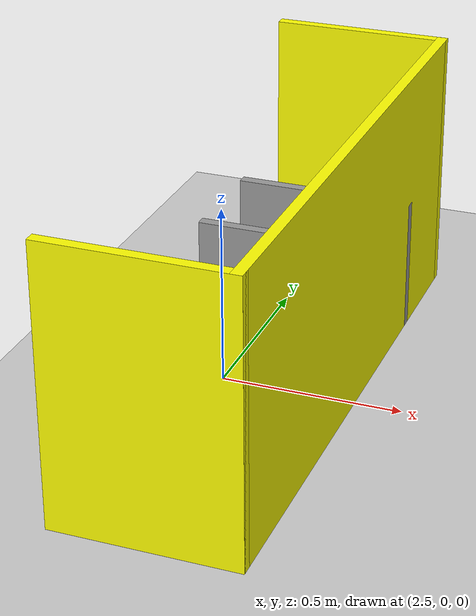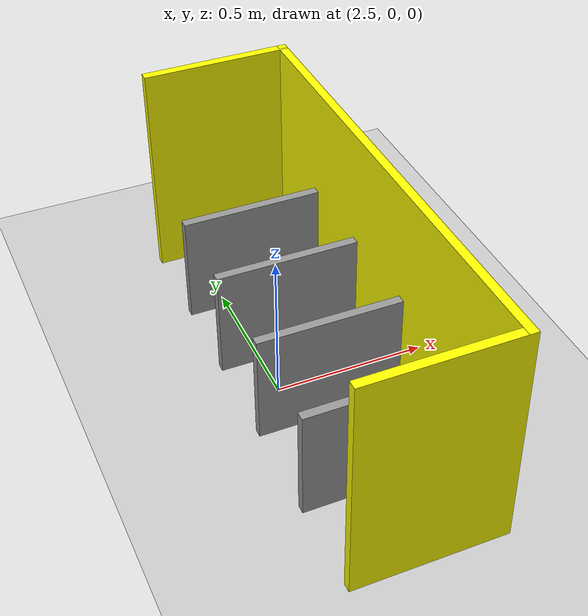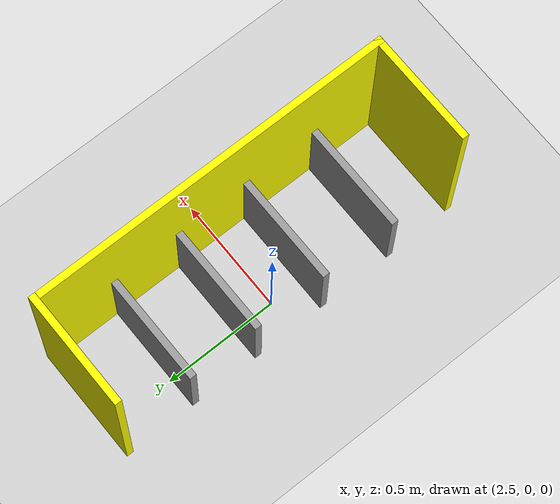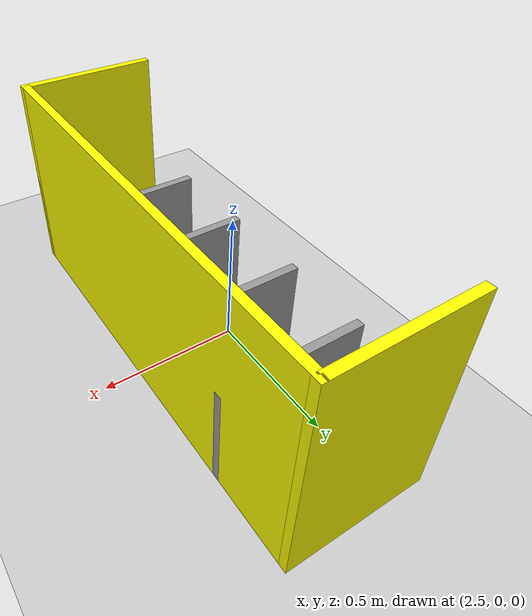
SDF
<sdf version="1.6">
 <world name="default">
  <light name="sun" type="directional">
   <pose>0 0 10 0 -0 0</pose>
   <diffuse>0.8 0.8 0.8 1</diffuse>
   <specular>0.2 0.2 0.2 1</specular>
   <attenuation>
    <range>1000</range>
    <constant>0.9</constant>
    <linear>0.01</linear>
    <quadratic>0.001</quadratic>
   </attenuation>
   <direction>-0.5 0.1 -0.9</direction>
  </light>
  <model name="ground_plane">
   <static>1</static>
   <link name="link">
    <collision name="collision">
     <geometry><plane><normal>0 0 1</normal><size>100 100</size></plane></geometry>
     <surface><friction><ode><mu>100</mu><mu2>50</mu2></ode></friction></surface>
    </collision>
    <visual name="visual">
     <cast_shadows>0</cast_shadows>
     <geometry><plane><normal>0 0 1</normal><size>100 100</size></plane></geometry>
     <material>
      <script><uri>file://media/materials/scripts/gazebo.material</uri><name>Gazebo/Grey</name></script>
     </material>
    </visual>
   </link>
  </model>
  <gravity>0 0 -9.8</gravity>
  <magnetic_field>6e-06 2.3e-05 -4.2e-05</magnetic_field>
  <atmosphere type="adiabatic"/>
  <physics name="default_physics" default="0" type="ode">
   <max_step_size>0.001</max_step_size>
   <real_time_factor>1</real_time_factor>
   <real_time_update_rate>1000</real_time_update_rate>
  </physics>
  <scene><ambient>0.4 0.4 0.4 1</ambient><background>0.7 0.7 0.7 1</background><shadows>1</shadows></scene>
  <spherical_coordinates>
   <surface_model>EARTH_WGS84</surface_model>
   <latitude_deg>0</latitude_deg>
   <longitude_deg>0</longitude_deg>
   <elevation>0</elevation>
   <heading_deg>0</heading_deg>
  </spherical_coordinates>
  <model name="goals">
   <pose>2.61967 0.001409 0 0 0 -1.57092</pose>
   <link name="Wall_106">
    <collision name="Wall_106_Collision">
     <geometry><box><size>0.5 0.03 0.375</size></box></geometry>
     <pose>0 0 0.1875 0 -0 0</pose>
    </collision>
    <visual name="Wall_106_Visual">
     <pose>0 0 0.1875 0 -0 0</pose>
     <geometry><box><size>0.5 0.03 0.375</size></box></geometry>
     <material>
      <script><uri>file://media/materials/scripts/gazebo.material</uri><name>Gazebo/Grey</name></script>
      <ambient>1 1 1 1</ambient>
     </material>
    </visual>
    <pose>0.152869 -0.000644 0 0 -0 1.5708</pose>
   </link>
   <link name="Wall_81">
    <collision name="Wall_81_Collision">
     <geometry><box><size>1.60284 0.03 0.75</size></box></geometry>
     <pose>0 0 0.375 0 -0 0</pose>
    </collision>
    <visual name="Wall_81_Visual">
     <pose>0 0 0.375 0 -0 0</pose>
     <geometry><box><size>1.60284 0.03 0.75</size></box></geometry>
     <material>
      <script><uri>file://media/materials/scripts/gazebo.material</uri><name>Gazebo/Grey</name></script>
      <ambient>1 1 0 1</ambient>
     </material>
    </visual>
    <pose>0 0.236828 0 0 -0 0</pose>
   </link>
   <link name="Wall_83">
    <collision name="Wall_83_Collision">
     <geometry><box><size>0.5 0.03 0.75</size></box></geometry>
     <pose>0 0 0.375 0 -0 0</pose>
    </collision>
    <visual name="Wall_83_Visual">
     <pose>0 0 0.375 0 -0 0</pose>
     <geometry><box><size>0.5 0.03 0.75</size></box></geometry>
     <material>
      <script><uri>file://media/materials/scripts/gazebo.material</uri><name>Gazebo/Grey</name></script>
      <ambient>1 1 0 1</ambient>
     </material>
    </visual>
    <pose>-0.7865 0.001828 0 0 0 -1.5708</pose>
   </link>
   <link name="Wall_85">
    <collision name="Wall_85_Collision">
     <geometry><box><size>0.5 0.03 0.75</size></box></geometry>
     <pose>0 0 0.375 0 -0 0</pose>
    </collision>
    <visual name="Wall_85_Visual">
     <pose>0 0 0.375 0 -0 0</pose>
     <geometry><box><size>0.5 0.03 0.75</size></box></geometry>
     <material>
      <script><uri>file://media/materials/scripts/gazebo.material</uri><name>Gazebo/Grey</name></script>
      <ambient>1 1 0 1</ambient>
     </material>
    </visual>
    <pose>0.7865 0.001828 0 0 0 -1.5708</pose>
   </link>
   <link name="Wall_93">
    <collision name="Wall_93_Collision">
     <geometry><box><size>0.5 0.03 0.375</size></box></geometry>
     <pose>0 0 0.1875 0 -0 0</pose>
    </collision>
    <visual name="Wall_93_Visual">
     <pose>0 0 0.1875 0 -0 0</pose>
     <geometry><box><size>0.5 0.03 0.375</size></box></geometry>
     <material>
      <script><uri>file://media/materials/scripts/gazebo.material</uri><name>Gazebo/Grey</name></script>
      <ambient>1 1 1 1</ambient>
     </material>
    </visual>
    <pose>-0.471782 0.001828 0 0 -0 1.5708</pose>
   </link>
   <link name="Wall_95">
    <collision name="Wall_95_Collision">
     <geometry><box><size>0.5 0.03 0.375</size></box></geometry>
     <pose>0 0 0.1875 0 -0 0</pose>
    </collision>
    <visual name="Wall_95_Visual">
     <pose>0 0 0.1875 0 -0 0</pose>
     <geometry><box><size>0.5 0.03 0.375</size></box></geometry>
     <material>
      <script><uri>file://media/materials/scripts/gazebo.material</uri><name>Gazebo/Grey</name></script>
      <ambient>1 1 1 1</ambient>
     </material>
    </visual>
    <pose>0.483934 -0.001828 0 0 -0 1.5708</pose>
   </link>
   <link name="Wall_99">
    <collision name="Wall_99_Collision">
     <geometry><box><size>0.5 0.03 0.375</size></box></geometry>
     <pose>0 0 0.1875 0 -0 0</pose>
    </collision>
    <visual name="Wall_99_Visual">
     <pose>0 0 0.1875 0 -0 0</pose>
     <geometry><box><size>0.5 0.03 0.375</size></box></geometry>
     <material>
      <script><uri>file://media/materials/scripts/gazebo.material</uri><name>Gazebo/Grey</name></script>
      <ambient>1 1 1 1</ambient>
     </material>
    </visual>
    <pose>-0.169113 -0.000644 0 0 -0 1.5708</pose>
   </link>
   <static>1</static>
  </model>
 </world>
</sdf>
